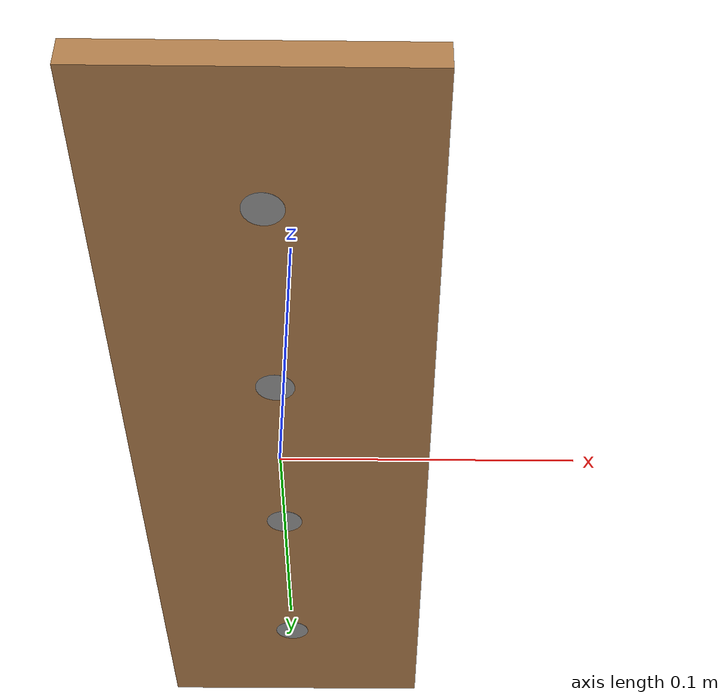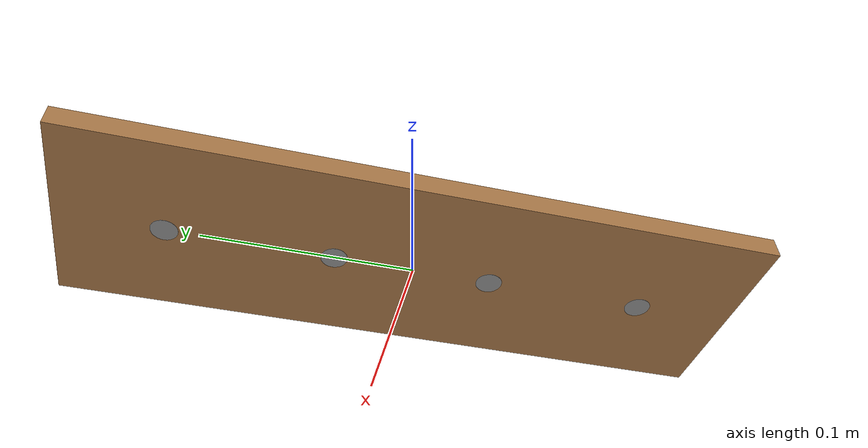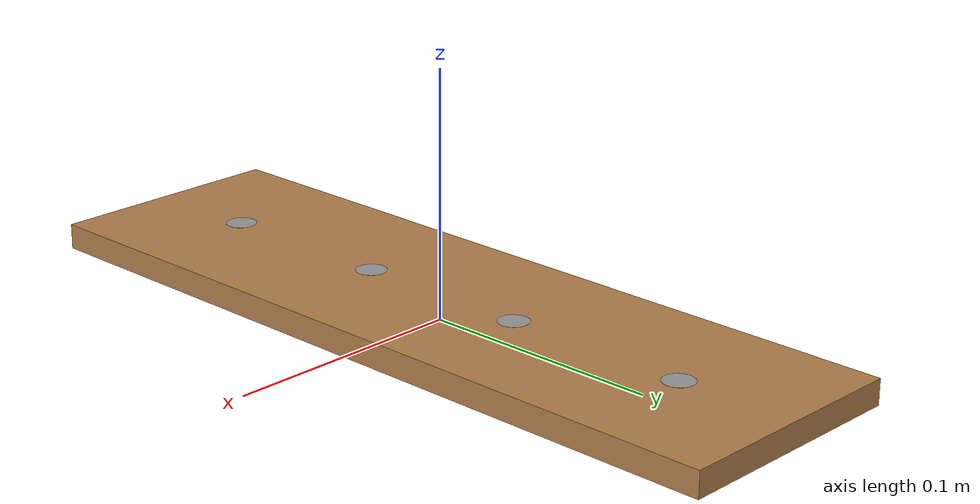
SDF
<?xml version='1.0'?>
<sdf version='1.7'>
  <model name='wooden_board'>
    <link name='base'>
      <pose>-0 -0 0.00523 0 -0 0</pose>
      <inertial>
        <mass>0.2765</mass>
        <inertia>
          <ixx>0.0025148</ixx>
          <ixy>0</ixy>
          <ixz>0</ixz>
          <iyy>0.00024037</iyy>
          <iyz>0</iyz>
          <izz>0.00275013</izz>
        </inertia>
        <pose>0 0 0 0 -0 0</pose>
      </inertial>
      <self_collide>0</self_collide>
      <enable_wind>0</enable_wind>
      <kinematic>0</kinematic>
      <visual name='visual'>
        <geometry>
          <box>
            <size>0.1016 0.3302 0.01046</size>
          </box>
        </geometry>
        <material>
          <script>
            <uri>file://media/materials/scripts/gazebo.material</uri>
            <name>Gazebo/Wood</name>
          </script>
          <shader type='pixel'/>
        </material>
        <pose>0 0 0 0 -0 0</pose>
        <transparency>0</transparency>
        <cast_shadows>1</cast_shadows>
      </visual>
      <visual name='tee_nut_1'>
        <pose>0 -0.116 0 0 -0 0</pose>
        <geometry>
          <cylinder>
            <radius>0.00635</radius>
            <length>0.0105646</length>
          </cylinder>
        </geometry>
        <material>
          <script>
            <uri>file://media/materials/scripts/gazebo.material</uri>
            <name>Gazebo/Grey</name>
          </script>
          <shader type='pixel'/>
        </material>
        <transparency>0</transparency>
        <cast_shadows>1</cast_shadows>
      </visual>
      <visual name='tee_nut_3'>
        <pose>0 0.038 0 0 -0 0</pose>
        <geometry>
          <cylinder>
            <radius>0.00635</radius>
            <length>0.0105646</length>
          </cylinder>
        </geometry>
        <material>
          <script>
            <uri>file://media/materials/scripts/gazebo.material</uri>
            <name>Gazebo/Grey</name>
          </script>
          <shader type='pixel'/>
        </material>
        <transparency>0</transparency>
        <cast_shadows>1</cast_shadows>
      </visual>
      <visual name='tee_nut_2'>
        <pose>0 -0.038 0 0 -0 0</pose>
        <geometry>
          <cylinder>
            <radius>0.00635</radius>
            <length>0.0105646</length>
          </cylinder>
        </geometry>
        <material>
          <script>
            <uri>file://media/materials/scripts/gazebo.material</uri>
            <name>Gazebo/Grey</name>
          </script>
          <shader type='pixel'/>
        </material>
        <transparency>0</transparency>
        <cast_shadows>1</cast_shadows>
      </visual>
      <visual name='tee_nut_4'>
        <pose>0 0.116 0 0 -0 0</pose>
        <geometry>
          <cylinder>
            <radius>0.00635</radius>
            <length>0.0105646</length>
          </cylinder>
        </geometry>
        <material>
          <script>
            <uri>file://media/materials/scripts/gazebo.material</uri>
            <name>Gazebo/Grey</name>
          </script>
          <shader type='pixel'/>
        </material>
        <transparency>0</transparency>
        <cast_shadows>1</cast_shadows>
      </visual>
      <collision name='collision'>
        <laser_retro>0</laser_retro>
        <max_contacts>10</max_contacts>
        <pose>0 0 0 0 -0 0</pose>
        <geometry>
          <box>
            <size>0.1016 0.3302 0.01046</size>
          </box>
        </geometry>
        <surface>
          <friction>
            <ode>
              <mu>1</mu>
              <mu2>1</mu2>
              <fdir1>0 0 0</fdir1>
              <slip1>0</slip1>
              <slip2>0</slip2>
            </ode>
            <torsional>
              <coefficient>1</coefficient>
              <patch_radius>0</patch_radius>
              <surface_radius>0.01</surface_radius>
              <use_patch_radius>0</use_patch_radius>
              <ode>
                <slip>0</slip>
              </ode>
            </torsional>
          </friction>
          <bounce>
            <restitution_coefficient>0</restitution_coefficient>
            <threshold>1e+06</threshold>
          </bounce>
          <contact>
            <collide_without_contact>0</collide_without_contact>
            <collide_without_contact_bitmask>1</collide_without_contact_bitmask>
            <collide_bitmask>1</collide_bitmask>
            <ode>
              <soft_cfm>0</soft_cfm>
              <soft_erp>0.2</soft_erp>
              <kp>100000</kp>
              <kd>100</kd>
              <max_vel>100</max_vel>
              <min_depth>0.001</min_depth>
            </ode>
            <bullet>
              <split_impulse>1</split_impulse>
              <split_impulse_penetration_threshold>-0.01</split_impulse_penetration_threshold>
              <soft_cfm>0</soft_cfm>
              <soft_erp>0.2</soft_erp>
              <kp>100000</kp>
              <kd>100</kd>
            </bullet>
          </contact>
        </surface>
      </collision>
    </link>
    <static>0</static>
    <allow_auto_disable>1</allow_auto_disable>
  </model>
</sdf>
